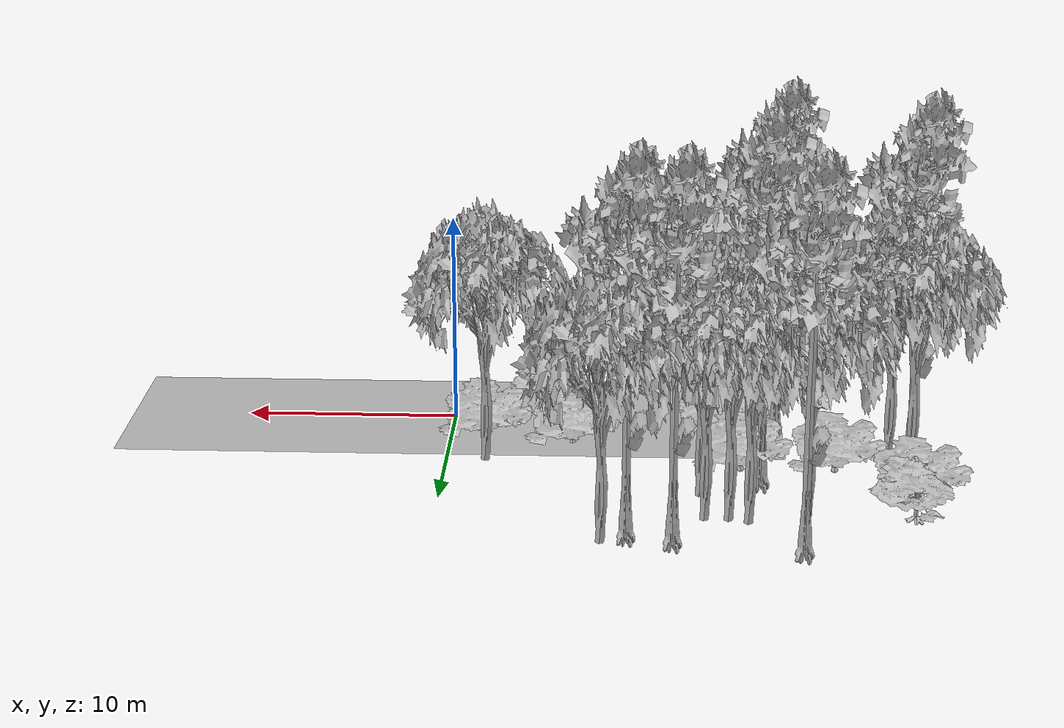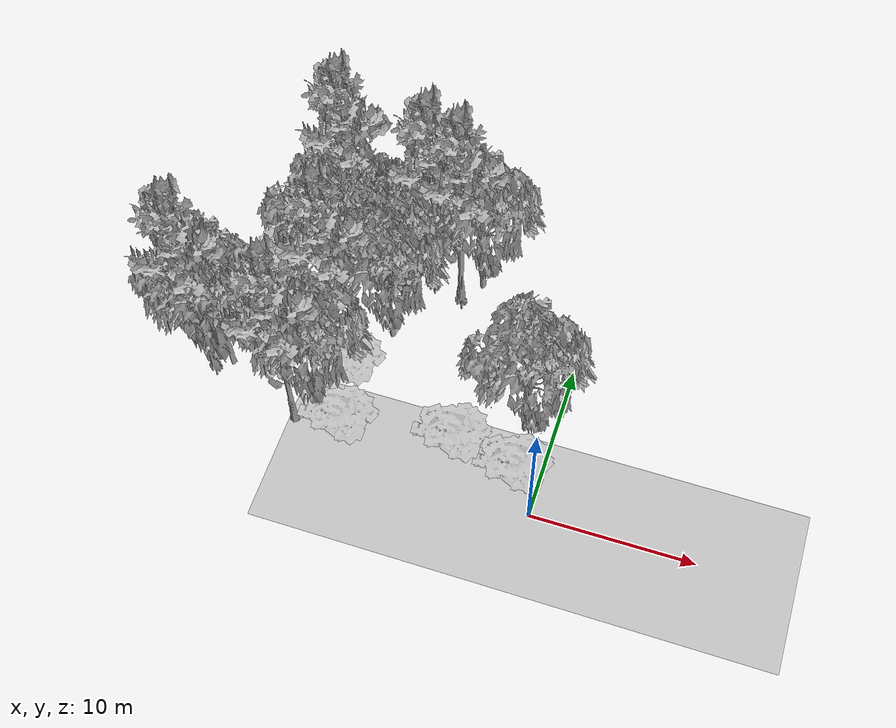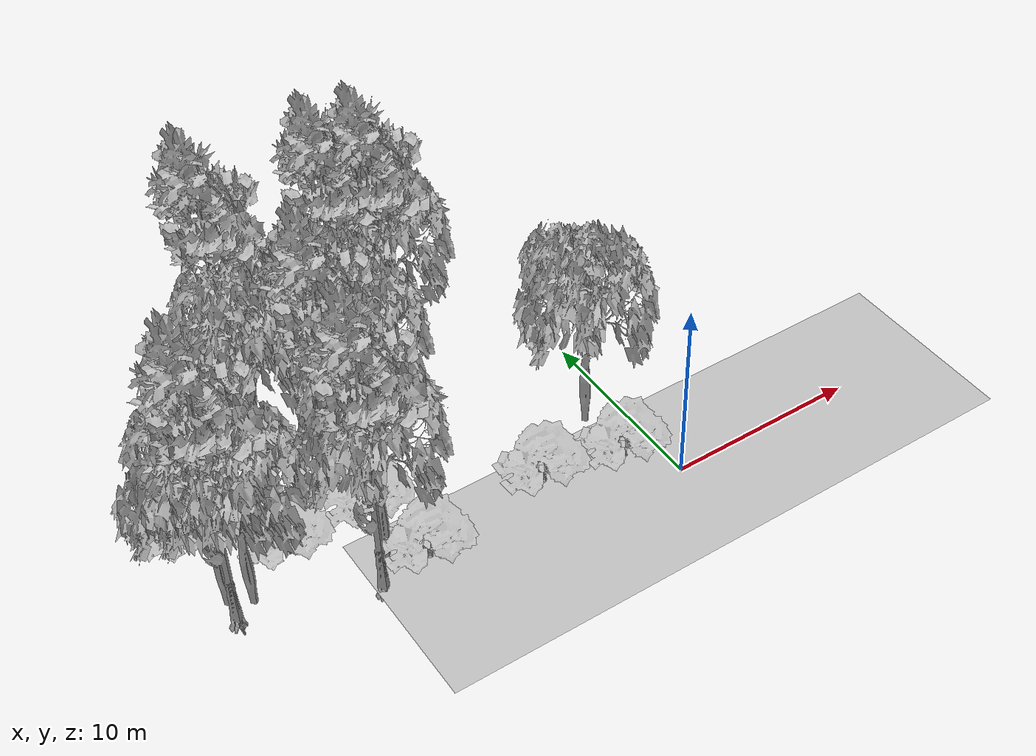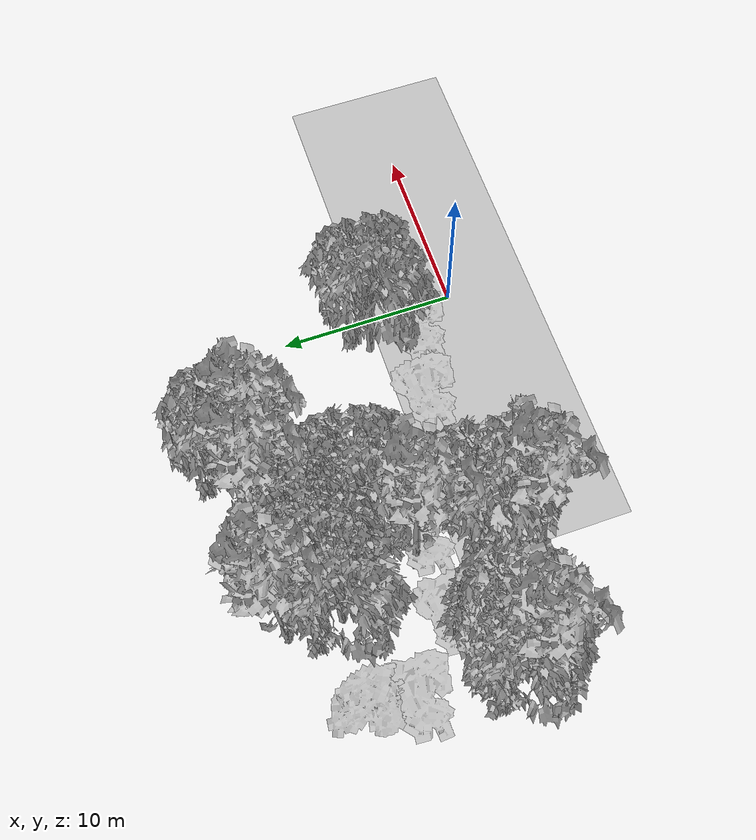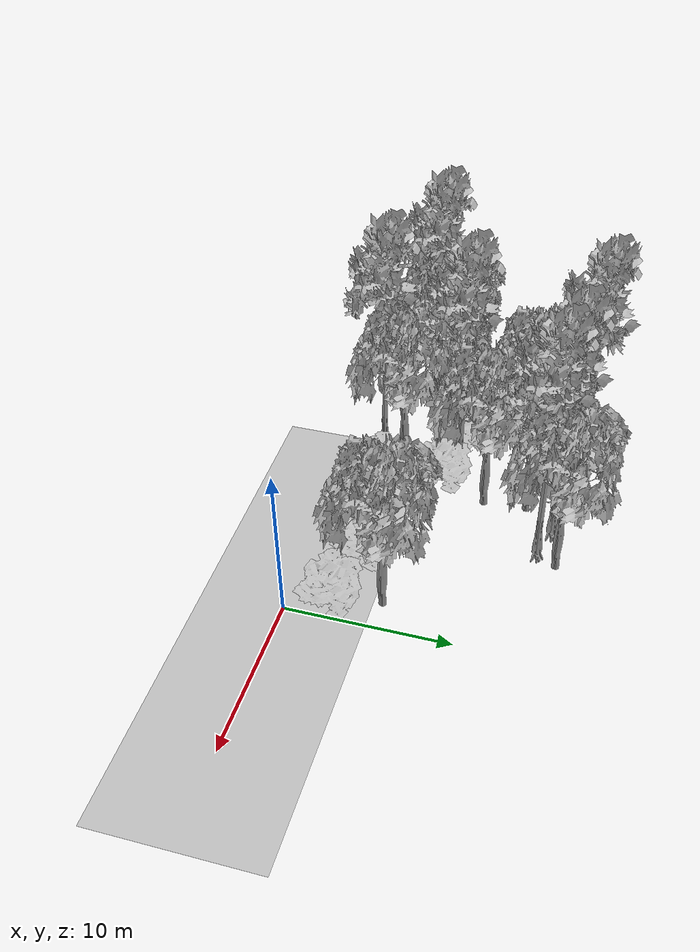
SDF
<sdf version="1.7">
 <world name="default">
  <model name="ground_plane">
   <static>1</static>
   <link name="link">
    <collision name="collision">
     <pose>-50 0 0 0 -0 0</pose>
     <geometry><plane><normal>0 0 1</normal><size>100 100</size></plane></geometry>
     <surface><contact><ode><min_depth>0.01</min_depth><max_vel>0</max_vel></ode></contact></surface>
    </collision>
    <visual name="grass">
     <cast_shadows>0</cast_shadows>
     <geometry>
      <mesh>
       <scale>0.5814285714285714 0.18142857142857144 0.1</scale>
       <uri>file://grass_plane/meshes/grass_plane.dae</uri>
      </mesh>
     </geometry>
    </visual>
   </link>
  </model>
  <model name="Tree 18">
   <static>1</static>
   <pose>-12.638492599856498 2.162255533944254 0 1.57079 -0 0</pose>
   <link name="link">
    <collision name="collision">
     <geometry><mesh><scale>3 2 3</scale><uri>model://tree_3/meshes/tree_3.obj</uri></mesh></geometry>
    </collision>
    <visual name="visual">
     <geometry><mesh><scale>3 2 3</scale><uri>model://tree_3/meshes/tree_3.obj</uri></mesh></geometry>
    </visual>
   </link>
  </model>
  <model name="Tree 25">
   <static>1</static>
   <pose>-13.55741859512898 6.050680133643091 0 1.57079 -0 0</pose>
   <link name="link">
    <collision name="collision">
     <geometry><mesh><scale>3 2 3</scale><uri>model://tree_3/meshes/tree_3.obj</uri></mesh></geometry>
    </collision>
    <visual name="visual">
     <geometry><mesh><scale>3 2 3</scale><uri>model://tree_3/meshes/tree_3.obj</uri></mesh></geometry>
    </visual>
   </link>
  </model>
  <model name="Tree 26">
   <static>1</static>
   <pose>-16.36699653730335 11.6769706178248 0 1.57079 -0 0</pose>
   <link name="link">
    <collision name="collision">
     <geometry><mesh><scale>3.5 5 3.5</scale><uri>model://tree_2/meshes/tree_2.obj</uri></mesh></geometry>
    </collision>
    <visual name="visual">
     <geometry><mesh><scale>3.5 5 3.5</scale><uri>model://tree_2/meshes/tree_2.obj</uri></mesh></geometry>
    </visual>
   </link>
  </model>
  <model name="Tree 41">
   <static>1</static>
   <pose>-16.0083089753336 14.668592147911948 0 1.57079 -0 0</pose>
   <link name="link">
    <collision name="collision">
     <geometry><mesh><scale>3.5 5 3.5</scale><uri>model://tree_9/meshes/tree_9.obj</uri></mesh></geometry>
    </collision>
    <visual name="visual">
     <geometry><mesh><scale>3.5 5 3.5</scale><uri>model://tree_9/meshes/tree_9.obj</uri></mesh></geometry>
    </visual>
   </link>
  </model>
  <model name="Tree 65">
   <static>1</static>
   <pose>-10.406628564743798 13.805071548987648 0 1.57079 -0 0</pose>
   <link name="link">
    <collision name="collision">
     <geometry><mesh><scale>3.5 5 3.5</scale><uri>model://tree_9/meshes/tree_9.obj</uri></mesh></geometry>
    </collision>
    <visual name="visual">
     <geometry><mesh><scale>3.5 5 3.5</scale><uri>model://tree_9/meshes/tree_9.obj</uri></mesh></geometry>
    </visual>
   </link>
  </model>
  <model name="Tree 78">
   <static>1</static>
   <pose>-21.534989645376218 3.8657509846976943 0 1.57079 -0 0</pose>
   <link name="link">
    <collision name="collision">
     <geometry><mesh><scale>3.5 5 3.5</scale><uri>model://tree_9/meshes/tree_9.obj</uri></mesh></geometry>
    </collision>
    <visual name="visual">
     <geometry><mesh><scale>3.5 5 3.5</scale><uri>model://tree_9/meshes/tree_9.obj</uri></mesh></geometry>
    </visual>
   </link>
  </model>
  <model name="Tree 82">
   <static>1</static>
   <pose>-15.318363558699112 1.7920786326565903 0 1.57079 -0 0</pose>
   <link name="link">
    <collision name="collision">
     <geometry><mesh><scale>3.5 5 3.5</scale><uri>model://tree_9/meshes/tree_9.obj</uri></mesh></geometry>
    </collision>
    <visual name="visual">
     <geometry><mesh><scale>3.5 5 3.5</scale><uri>model://tree_9/meshes/tree_9.obj</uri></mesh></geometry>
    </visual>
   </link>
  </model>
  <model name="Tree 85">
   <static>1</static>
   <pose>-11.737780107880326 9.247656114327533 0 1.57079 -0 0</pose>
   <link name="link">
    <collision name="collision">
     <geometry><mesh><scale>3.5 5 3.5</scale><uri>model://tree_2/meshes/tree_2.obj</uri></mesh></geometry>
    </collision>
    <visual name="visual">
     <geometry><mesh><scale>3.5 5 3.5</scale><uri>model://tree_2/meshes/tree_2.obj</uri></mesh></geometry>
    </visual>
   </link>
  </model>
  <model name="Tree 92">
   <static>1</static>
   <pose>-8.402968227619596 13.24716391809099 0 1.57079 -0 0</pose>
   <link name="link">
    <collision name="collision">
     <geometry><mesh><scale>3.5 5 3.5</scale><uri>model://tree_9/meshes/tree_9.obj</uri></mesh></geometry>
    </collision>
    <visual name="visual">
     <geometry><mesh><scale>3.5 5 3.5</scale><uri>model://tree_9/meshes/tree_9.obj</uri></mesh></geometry>
    </visual>
   </link>
  </model>
  <model name="Tree 94">
   <static>1</static>
   <pose>-21.3558278304267 8.944934060037085 0 1.57079 -0 0</pose>
   <link name="link">
    <collision name="collision">
     <geometry><mesh><scale>3 2 3</scale><uri>model://tree_3/meshes/tree_3.obj</uri></mesh></geometry>
    </collision>
    <visual name="visual">
     <geometry><mesh><scale>3 2 3</scale><uri>model://tree_3/meshes/tree_3.obj</uri></mesh></geometry>
    </visual>
   </link>
  </model>
  <model name="Tree 95">
   <static>1</static>
   <pose>-7.419305736321078 14.500296651506936 0 1.57079 -0 0</pose>
   <link name="link">
    <collision name="collision">
     <geometry><mesh><scale>3.5 5 3.5</scale><uri>model://tree_2/meshes/tree_2.obj</uri></mesh></geometry>
    </collision>
    <visual name="visual">
     <geometry><mesh><scale>3.5 5 3.5</scale><uri>model://tree_2/meshes/tree_2.obj</uri></mesh></geometry>
    </visual>
   </link>
  </model>
  <model name="Tree 96">
   <static>1</static>
   <pose>-5.768754816608542 3.125177054611939 0 1.57079 -0 0</pose>
   <link name="link">
    <collision name="collision">
     <geometry><mesh><scale>3 2 3</scale><uri>model://tree_3/meshes/tree_3.obj</uri></mesh></geometry>
    </collision>
    <visual name="visual">
     <geometry><mesh><scale>3 2 3</scale><uri>model://tree_3/meshes/tree_3.obj</uri></mesh></geometry>
    </visual>
   </link>
  </model>
  <model name="Tree 100">
   <static>1</static>
   <pose>-12.95366010316885 11.961133227363181 0 1.57079 -0 0</pose>
   <link name="link">
    <collision name="collision">
     <geometry><mesh><scale>3.5 5 3.5</scale><uri>model://tree_2/meshes/tree_2.obj</uri></mesh></geometry>
    </collision>
    <visual name="visual">
     <geometry><mesh><scale>3.5 5 3.5</scale><uri>model://tree_2/meshes/tree_2.obj</uri></mesh></geometry>
    </visual>
   </link>
  </model>
  <model name="Tree 104">
   <static>1</static>
   <pose>-13.812977119838663 12.24610550512676 0 1.57079 -0 0</pose>
   <link name="link">
    <collision name="collision">
     <geometry><mesh><scale>3.5 5 3.5</scale><uri>model://tree_2/meshes/tree_2.obj</uri></mesh></geometry>
    </collision>
    <visual name="visual">
     <geometry><mesh><scale>3.5 5 3.5</scale><uri>model://tree_2/meshes/tree_2.obj</uri></mesh></geometry>
    </visual>
   </link>
  </model>
  <model name="Tree 107">
   <static>1</static>
   <pose>-17.870791775646257 6.022888656186236 0 1.57079 -0 0</pose>
   <link name="link">
    <collision name="collision">
     <geometry><mesh><scale>3 2 3</scale><uri>model://tree_3/meshes/tree_3.obj</uri></mesh></geometry>
    </collision>
    <visual name="visual">
     <geometry><mesh><scale>3 2 3</scale><uri>model://tree_3/meshes/tree_3.obj</uri></mesh></geometry>
    </visual>
   </link>
  </model>
  <model name="Tree 115">
   <static>1</static>
   <pose>-1.908818513266901 5.398783398512837 0 1.57079 -0 0</pose>
   <link name="link">
    <collision name="collision">
     <geometry><mesh><scale>3.5 5 3.5</scale><uri>model://tree_2/meshes/tree_2.obj</uri></mesh></geometry>
    </collision>
    <visual name="visual">
     <geometry><mesh><scale>3.5 5 3.5</scale><uri>model://tree_2/meshes/tree_2.obj</uri></mesh></geometry>
    </visual>
   </link>
  </model>
  <model name="Tree 126">
   <static>1</static>
   <pose>-20.541194995835248 4.328291028700203 0 1.57079 -0 0</pose>
   <link name="link">
    <collision name="collision">
     <geometry><mesh><scale>3.5 5 3.5</scale><uri>model://tree_2/meshes/tree_2.obj</uri></mesh></geometry>
    </collision>
    <visual name="visual">
     <geometry><mesh><scale>3.5 5 3.5</scale><uri>model://tree_2/meshes/tree_2.obj</uri></mesh></geometry>
    </visual>
   </link>
  </model>
  <model name="Tree 127">
   <static>1</static>
   <pose>-14.34531824518298 3.374209729767241 0 1.57079 -0 0</pose>
   <link name="link">
    <collision name="collision">
     <geometry><mesh><scale>3.5 5 3.5</scale><uri>model://tree_2/meshes/tree_2.obj</uri></mesh></geometry>
    </collision>
    <visual name="visual">
     <geometry><mesh><scale>3.5 5 3.5</scale><uri>model://tree_2/meshes/tree_2.obj</uri></mesh></geometry>
    </visual>
   </link>
  </model>
  <model name="Tree 135">
   <static>1</static>
   <pose>-1.6609394254836118 2.273741434919927 0 1.57079 -0 0</pose>
   <link name="link">
    <collision name="collision">
     <geometry><mesh><scale>3 2 3</scale><uri>model://tree_3/meshes/tree_3.obj</uri></mesh></geometry>
    </collision>
    <visual name="visual">
     <geometry><mesh><scale>3 2 3</scale><uri>model://tree_3/meshes/tree_3.obj</uri></mesh></geometry>
    </visual>
   </link>
  </model>
  <model name="Tree 137">
   <static>1</static>
   <pose>-14.441529428845364 7.051244524848833 0 1.57079 -0 0</pose>
   <link name="link">
    <collision name="collision">
     <geometry><mesh><scale>3.5 5 3.5</scale><uri>model://tree_9/meshes/tree_9.obj</uri></mesh></geometry>
    </collision>
    <visual name="visual">
     <geometry><mesh><scale>3.5 5 3.5</scale><uri>model://tree_9/meshes/tree_9.obj</uri></mesh></geometry>
    </visual>
   </link>
  </model>
  <model name="Tree 160">
   <static>1</static>
   <pose>-21.53869906736711 4.905381531624062 0 1.57079 -0 0</pose>
   <link name="link">
    <collision name="collision">
     <geometry><mesh><scale>3.5 5 3.5</scale><uri>model://tree_2/meshes/tree_2.obj</uri></mesh></geometry>
    </collision>
    <visual name="visual">
     <geometry><mesh><scale>3.5 5 3.5</scale><uri>model://tree_2/meshes/tree_2.obj</uri></mesh></geometry>
    </visual>
   </link>
  </model>
  <model name="Tree 175">
   <static>1</static>
   <pose>-21.006433732501435 11.545365582854917 0 1.57079 -0 0</pose>
   <link name="link">
    <collision name="collision">
     <geometry><mesh><scale>4 2.5 4</scale><uri>model://tree_1/meshes/tree_1.obj</uri></mesh></geometry>
    </collision>
    <visual name="visual">
     <geometry><mesh><scale>4 2.5 4</scale><uri>model://tree_1/meshes/tree_1.obj</uri></mesh></geometry>
    </visual>
   </link>
  </model>
  <model name="Tree 178">
   <static>1</static>
   <pose>-11.895549230254538 11.921548906950225 0 1.57079 -0 0</pose>
   <link name="link">
    <collision name="collision">
     <geometry><mesh><scale>3.5 5 3.5</scale><uri>model://tree_2/meshes/tree_2.obj</uri></mesh></geometry>
    </collision>
    <visual name="visual">
     <geometry><mesh><scale>3.5 5 3.5</scale><uri>model://tree_2/meshes/tree_2.obj</uri></mesh></geometry>
    </visual>
   </link>
  </model>
 </world>
</sdf>
